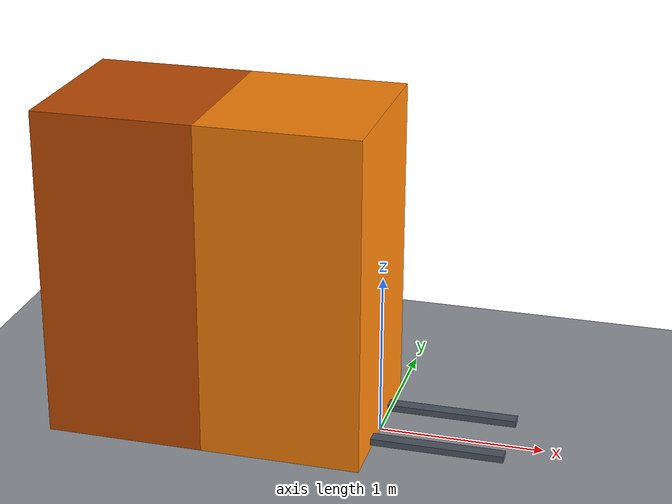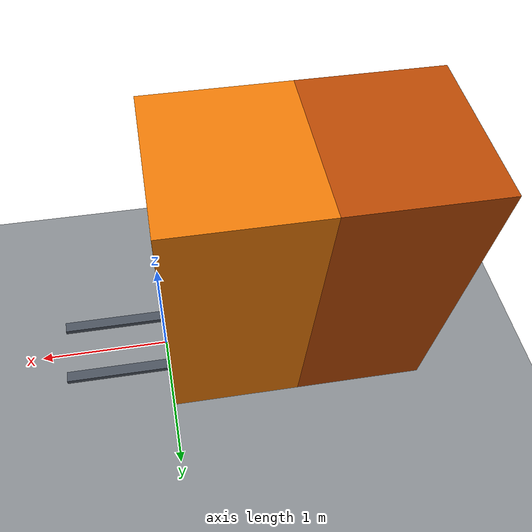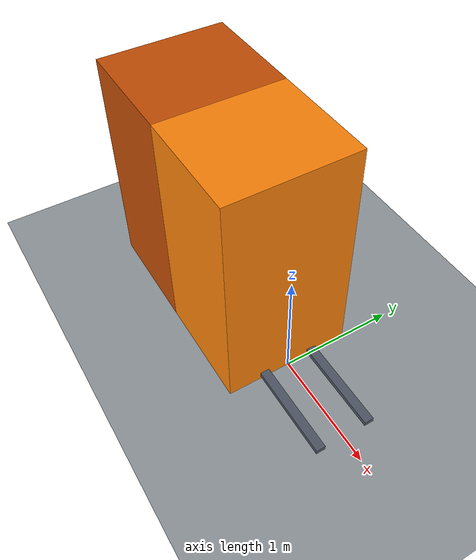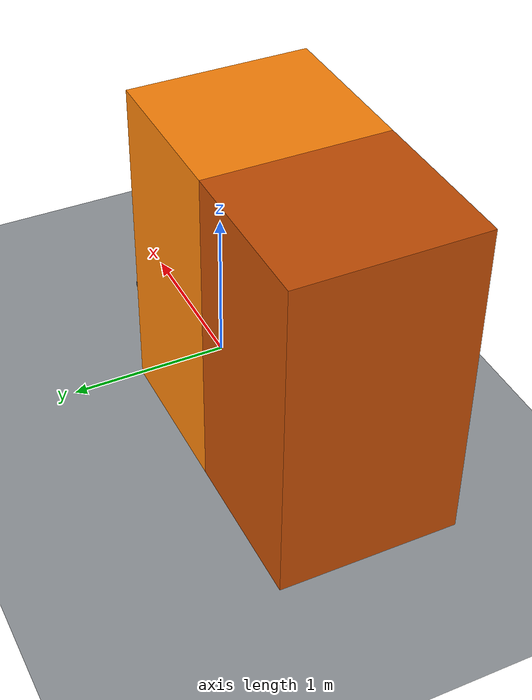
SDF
<?xml version="1.0"?>
<sdf version="1.10">
  <!-- Minimal development harness, separate from gzSimulator.py output. -->
  <world name="forklift_test">
    <gravity>0 0 -9.81</gravity>
    <physics name="default_physics" type="ignored">
      <max_step_size>0.005</max_step_size>
      <real_time_factor>1</real_time_factor>
    </physics>
    <plugin filename="gz-sim-physics-system" name="gz::sim::systems::Physics"/>
    <plugin filename="gz-sim-user-commands-system" name="gz::sim::systems::UserCommands"/>
    <plugin filename="gz-sim-scene-broadcaster-system" name="gz::sim::systems::SceneBroadcaster"/>
    <scene>
      <ambient>0.65 0.65 0.65 1</ambient>
      <background>0.78 0.8 0.84 1</background>
      <shadows>false</shadows>
    </scene>
    <light type="directional" name="sun">
      <pose>0 0 10 0 0 0</pose><cast_shadows>false</cast_shadows>
      <direction>-0.5 0.2 -1</direction>
      <diffuse>0.9 0.9 0.9 1</diffuse><specular>0.2 0.2 0.2 1</specular>
    </light>
    <model name="ground_plane">
      <static>true</static>
      <link name="link">
        <collision name="collision">
          <max_contacts>4</max_contacts>
          <geometry><plane><normal>0 0 1</normal><size>20 20</size></plane></geometry>
          <surface><friction><ode><mu>0.8</mu><mu2>0.8</mu2></ode></friction></surface>
        </collision>
        <visual name="visual">
          <geometry><plane><normal>0 0 1</normal><size>20 20</size></plane></geometry>
          <material><ambient>0.58 0.6 0.62 1</ambient><diffuse>0.58 0.6 0.62 1</diffuse></material>
        </visual>
      </link>
    </model>
    <include>
      <uri>model://simple_forklift</uri>
      <pose>0 0 0.001 0 0 0</pose>
    </include>
  </world>
</sdf>

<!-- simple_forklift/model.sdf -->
<sdf version="1.10">
  <model name="simple_forklift" canonical_link="body">
    <static>false</static>
    <self_collide>false</self_collide>
    <allow_auto_disable>false</allow_auto_disable>

    <frame name="fork_tip_low" attached_to="body">
      <pose relative_to="body">0.8 0 0.05 0 0 0</pose>
    </frame>

    <link name="body">
      <gravity>true</gravity>
      <kinematic>false</kinematic>
      <inertial>
        <pose>-1.134 0 1.0175 0 0 0</pose>
        <mass>3007</mass>
        <inertia>
          <ixx>1340.37676517</ixx>
          <ixy>0</ixy>
          <ixz>0</ixz>
          <iyy>1905.79475258</iyy>
          <iyz>0</iyz>
          <izz>1170.72758858</izz>
        </inertia>
      </inertial>

      <collision name="front_body_collision">
      <max_contacts>4</max_contacts>
        <pose>-0.486 0 1.0175 0 0 0</pose>
        <geometry><box><size>0.972 1.099 2.035</size></box></geometry>
        <surface>
  <friction>
    <ode>
      <mu>0.02</mu>
      <mu2>0.02</mu2>
    </ode>
    <bullet>
      <friction>0.02</friction>
      <friction2>0.02</friction2>
      <rolling_friction>0.02</rolling_friction>
    </bullet>
  </friction>
  <bounce>
    <restitution_coefficient>0</restitution_coefficient>
    <threshold>100000</threshold>
  </bounce>
  <contact>
    <ode>
      <kp>1000000</kp>
      <kd>100</kd>
      <max_vel>1</max_vel>
      <min_depth>0.0005</min_depth>
    </ode>
  </contact>
</surface>
      </collision>
      <visual name="front_body_visual">
        <pose>-0.486 0 1.0175 0 0 0</pose>
        <geometry><box><size>0.972 1.099 2.035</size></box></geometry>
        <material>
          <ambient>0.95 0.45 0.02 1</ambient>
          <diffuse>1.00 0.52 0.04 1</diffuse>
          <specular>0.15 0.15 0.15 1</specular>
        </material>
      </visual>

      <collision name="rear_body_collision">
      <max_contacts>4</max_contacts>
        <pose>-1.458 0 1.0175 0 0 0</pose>
        <geometry><box><size>0.972 1.099 2.035</size></box></geometry>
        <surface>
  <friction>
    <ode>
      <mu>0.02</mu>
      <mu2>0.02</mu2>
    </ode>
    <bullet>
      <friction>0.02</friction>
      <friction2>0.02</friction2>
      <rolling_friction>0.02</rolling_friction>
    </bullet>
  </friction>
  <bounce>
    <restitution_coefficient>0</restitution_coefficient>
    <threshold>100000</threshold>
  </bounce>
  <contact>
    <ode>
      <kp>1000000</kp>
      <kd>100</kd>
      <max_vel>1</max_vel>
      <min_depth>0.0005</min_depth>
    </ode>
  </contact>
</surface>
      </collision>
      <visual name="rear_body_visual">
        <pose>-1.458 0 1.0175 0 0 0</pose>
        <geometry><box><size>0.972 1.099 2.035</size></box></geometry>
        <material>
          <ambient>0.65 0.25 0.01 1</ambient>
          <diffuse>0.78 0.31 0.02 1</diffuse>
          <specular>0.12 0.12 0.12 1</specular>
        </material>
      </visual>
    </link>

    <link name="left_fork">
      <pose>0.4 0.225 0.05 0 0 0</pose>
      <gravity>true</gravity>
      <inertial>
        <mass>25</mass>
        <inertia>
          <ixx>0.0166666666667</ixx><ixy>0</ixy><ixz>0</ixz>
          <iyy>1.33666666667</iyy><iyz>0</iyz><izz>1.34666666667</izz>
        </inertia>
      </inertial>
      <collision name="collision">
        <max_contacts>4</max_contacts>
        <geometry><box><size>0.8 0.08 0.04</size></box></geometry>
        <surface>
  <friction>
    <ode>
      <mu>0.5</mu>
      <mu2>0.5</mu2>
    </ode>
    <bullet>
      <friction>0.5</friction>
      <friction2>0.5</friction2>
      <rolling_friction>0.5</rolling_friction>
    </bullet>
  </friction>
  <bounce>
    <restitution_coefficient>0</restitution_coefficient>
    <threshold>100000</threshold>
  </bounce>
  <contact>
    <ode>
      <kp>1000000</kp>
      <kd>100</kd>
      <max_vel>1</max_vel>
      <min_depth>0.0005</min_depth>
    </ode>
  </contact>
</surface>
      </collision>
      <visual name="visual">
        <geometry><box><size>0.8 0.08 0.04</size></box></geometry>
        <material><ambient>0.22 0.24 0.27 1</ambient><diffuse>0.32 0.35 0.40 1</diffuse><specular>0.55 0.55 0.55 1</specular></material>
      </visual>
    </link>

    <link name="right_fork">
      <pose>0.4 -0.225 0.05 0 0 0</pose>
      <gravity>true</gravity>
      <inertial>
        <mass>25</mass>
        <inertia>
          <ixx>0.0166666666667</ixx><ixy>0</ixy><ixz>0</ixz>
          <iyy>1.33666666667</iyy><iyz>0</iyz><izz>1.34666666667</izz>
        </inertia>
      </inertial>
      <collision name="collision">
        <max_contacts>4</max_contacts>
        <geometry><box><size>0.8 0.08 0.04</size></box></geometry>
        <surface>
  <friction>
    <ode>
      <mu>0.5</mu>
      <mu2>0.5</mu2>
    </ode>
    <bullet>
      <friction>0.5</friction>
      <friction2>0.5</friction2>
      <rolling_friction>0.5</rolling_friction>
    </bullet>
  </friction>
  <bounce>
    <restitution_coefficient>0</restitution_coefficient>
    <threshold>100000</threshold>
  </bounce>
  <contact>
    <ode>
      <kp>1000000</kp>
      <kd>100</kd>
      <max_vel>1</max_vel>
      <min_depth>0.0005</min_depth>
    </ode>
  </contact>
</surface>
      </collision>
      <visual name="visual">
        <geometry><box><size>0.8 0.08 0.04</size></box></geometry>
        <material><ambient>0.22 0.24 0.27 1</ambient><diffuse>0.32 0.35 0.40 1</diffuse><specular>0.55 0.55 0.55 1</specular></material>
      </visual>
    </link>

    <joint name="left_fork_lift_joint" type="prismatic">
      <parent>body</parent><child>left_fork</child>
      <axis>
        <xyz>0 0 1</xyz>
        <limit>
          <lower>0</lower>
          <upper>1.8</upper>
          <effort>12000</effort>
        </limit>
        <dynamics><damping>50</damping><friction>10</friction></dynamics>
      </axis>
    </joint>
    <joint name="right_fork_lift_joint" type="prismatic">
      <parent>body</parent><child>right_fork</child>
      <axis>
        <xyz>0 0 1</xyz>
        <limit>
          <lower>0</lower>
          <upper>1.8</upper>
          <effort>12000</effort>
        </limit>
        <dynamics><damping>50</damping><friction>10</friction></dynamics>
      </axis>
    </joint>

    <!-- Direct model velocity command. The integrated GUI plugin applies acceleration ramps. -->
    <plugin filename="gz-sim-velocity-control-system" name="gz::sim::systems::VelocityControl">
      <topic>/forklift/cmd_vel</topic>
    </plugin>

    <!--
      One position target drives both fork joints. ABS mode limits motion
      with cmd_max but retains the final target after input is released.
    -->
    <plugin filename="gz-sim-joint-position-controller-system" name="gz::sim::systems::JointPositionController">
      <joint_name>left_fork_lift_joint</joint_name>
      <joint_name>right_fork_lift_joint</joint_name>
      <topic>/forklift/fork_position</topic>
      <initial_position>0</initial_position>
      <use_velocity_commands>true</use_velocity_commands>
      <cmd_max>0.5</cmd_max>
      <cmd_min>-0.5</cmd_min>
    </plugin>
  </model>
</sdf>
